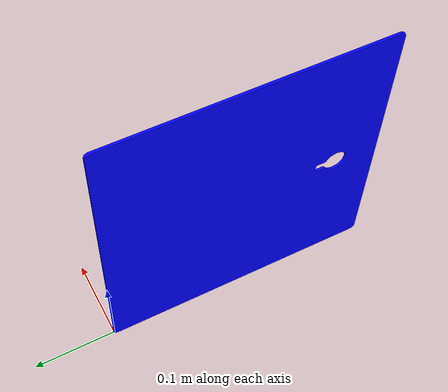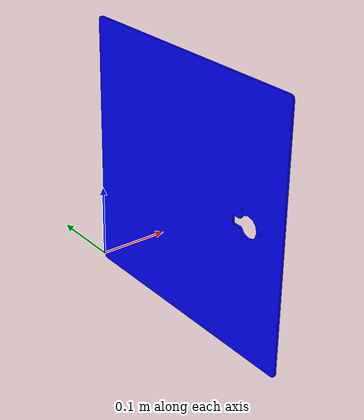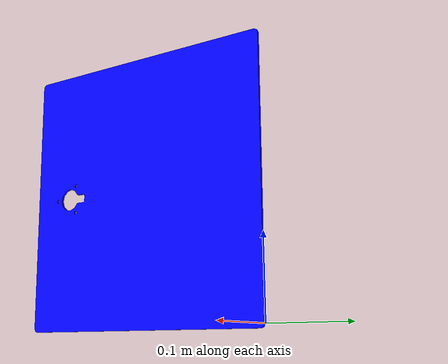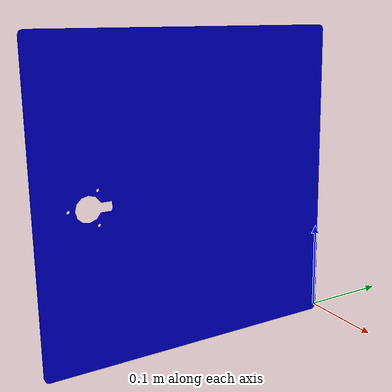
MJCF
<mujoco model="cabinet_door_1">
  <default>
    <default class="visual">
      <geom group="2" type="mesh" contype="0" conaffinity="0"/>
    </default>
    <default class="collision">
      <geom group="3" type="mesh"/>
    </default>
  </default>
  <asset>
    <material name="mtl_cabinet_door_1" specular="0.20000000000000004" shininess="1.0" rgba="0.00000000 0.00000000 1.00000000 1.0"/>
    <mesh file="cabinet_door_1.obj"/>
  </asset>
  <worldbody>
    <body name="cabinet_door_1">
      <geom material="mtl_cabinet_door_1" mesh="cabinet_door_1" class="visual"/>
      <geom mesh="cabinet_door_1" class="collision"/>
    </body>
  </worldbody>
</mujoco>
